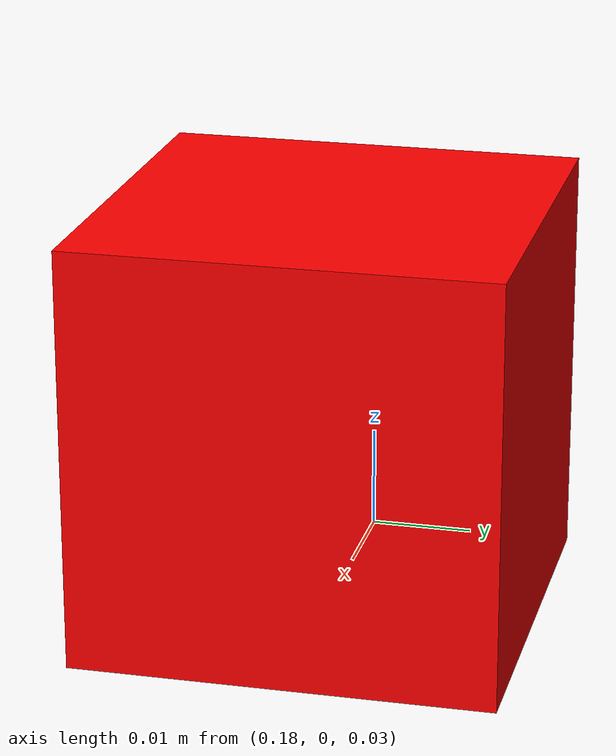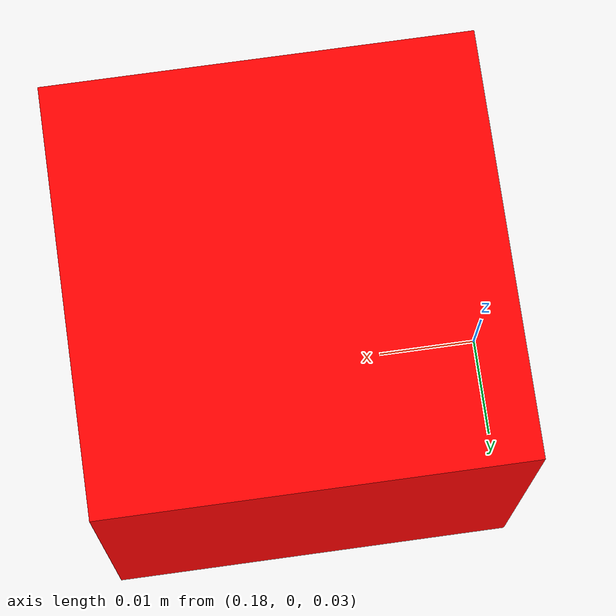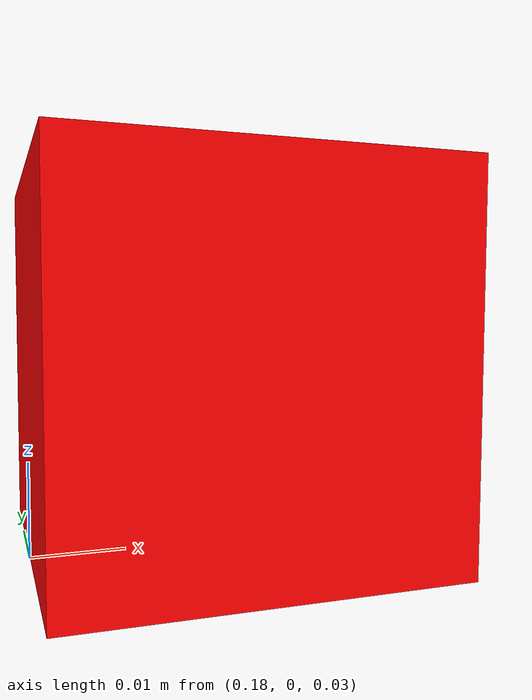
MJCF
<mujoco>

    <worldbody>

        <body name="box" pos="0.2 0.0 0.05">
            <joint name="red_box_joint" type="free" frictionloss="0.01" />
            <inertial pos="0 0 0" mass="0.05" diaginertia="0.002 0.002 0.002" />
            <geom condim="4" solimp="2 1 0.01" solref="0.01 1" friction="1 0.005 0.0001" pos="0 0 0" size="0.02 0.02 0.02" type="box" name="red_box" rgba="1 0 0 1" />
        </body>

    </worldbody>

</mujoco>
